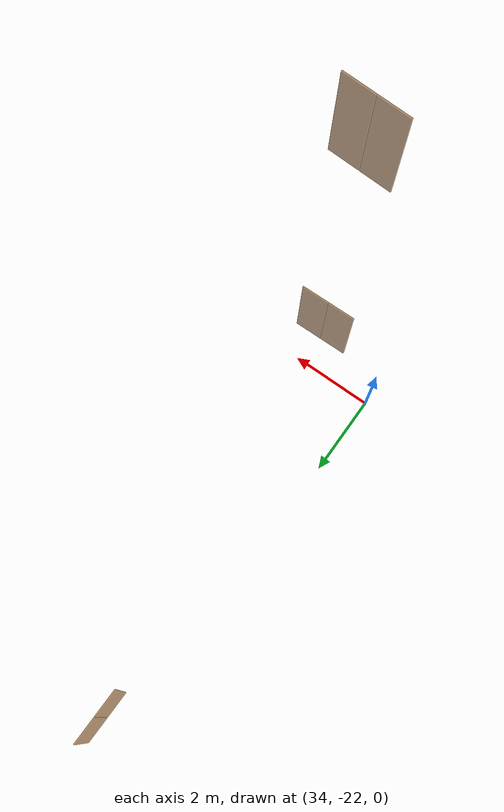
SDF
<sdf version="1.7">
 <world name="sim_world">
  <model name="TD1019AA">
   <pose>35.841424859408036 -22.755942036261796 0.0 0 0 -3.1322933793545134</pose>
   <link name="right">
    <pose>0.3469624931473078 0 1.11 0 0 0</pose>
    <visual name="right_visual">
     <geometry><box><size>0.6839249862946156 0.03 2.2</size></box></geometry>
     <material>
      <ambient>0.5 0.25 0 0.6</ambient>
      <diffuse>0.5 0.25 0 0.6</diffuse>
      <pbr><metal><metalness>0.0</metalness></metal></pbr>
     </material>
    </visual>
    <collision name="right_collision">
     <geometry><box><size>0.6839249862946156 0.03 2.2</size></box></geometry>
     <surface><contact><collide_bitmask>0x02</collide_bitmask></contact></surface>
    </collision>
    <inertial>
     <mass>50.0</mass>
     <inertia><ixx>20.17041666666667</ixx><iyy>22.11563911199205</iyy><izz>1.9527224453253758</izz></inertia>
    </inertial>
   </link>
   <joint name="right_joint" type="revolute">
    <parent>world</parent>
    <child>right</child>
    <axis><xyz>0 0 -1</xyz><limit><lower>0</lower><upper>1.57</upper></limit></axis>
    <pose>0.3469624931473078 0 0 0 0 0</pose>
   </joint>
   <link name="left">
    <pose>-0.3469624931473078 0 1.11 0 0 0</pose>
    <visual name="left_visual">
     <geometry><box><size>0.6839249862946156 0.03 2.2</size></box></geometry>
     <material>
      <ambient>0.5 0.25 0 0.6</ambient>
      <diffuse>0.5 0.25 0 0.6</diffuse>
      <pbr><metal><metalness>0.0</metalness></metal></pbr>
     </material>
    </visual>
    <collision name="left_collision">
     <geometry><box><size>0.6839249862946156 0.03 2.2</size></box></geometry>
     <surface><contact><collide_bitmask>0x02</collide_bitmask></contact></surface>
    </collision>
    <inertial>
     <mass>50.0</mass>
     <inertia><ixx>20.17041666666667</ixx><iyy>22.11563911199205</iyy><izz>1.9527224453253758</izz></inertia>
    </inertial>
   </link>
   <joint name="left_joint" type="revolute">
    <parent>world</parent>
    <child>left</child>
    <axis><xyz>0 0 -1</xyz><limit><lower>-1.57</lower><upper>0</upper></limit></axis>
    <pose>-0.3469624931473078 0 0 0 0 0</pose>
   </joint>
   <plugin name="register_component" filename="libregister_component.so">
    <component name="Door">
     <v_max_door>0.5</v_max_door>
     <a_max_door>0.3</a_max_door>
     <a_nom_door>0.15</a_nom_door>
     <dx_min_door>0.01</dx_min_door>
     <f_max_door>500.0</f_max_door>
     <ros_interface>true</ros_interface>
     <door name="TD1019AA" type="DoubleSwingDoor" left_joint_name="left_joint" right_joint_name="right_joint"/>
    </component>
   </plugin>
  </model>
  <model name="TD1021AA">
   <pose>34.61294872050826 -12.449338541510535 0.0 0 0 1.5546589964034163</pose>
   <link name="right">
    <pose>0.345297861169204 0 1.11 0 0 0</pose>
    <visual name="right_visual">
     <geometry><box><size>0.680595722338408 0.03 2.2</size></box></geometry>
     <material>
      <ambient>0.5 0.25 0 0.6</ambient>
      <diffuse>0.5 0.25 0 0.6</diffuse>
      <pbr><metal><metalness>0.0</metalness></metal></pbr>
     </material>
    </visual>
    <collision name="right_collision">
     <geometry><box><size>0.680595722338408 0.03 2.2</size></box></geometry>
     <surface><contact><collide_bitmask>0x02</collide_bitmask></contact></surface>
    </collision>
    <inertial>
     <mass>50.0</mass>
     <inertia><ixx>20.17041666666667</ixx><iyy>22.096710571938917</iyy><izz>1.9337939052722477</izz></inertia>
    </inertial>
   </link>
   <joint name="right_joint" type="revolute">
    <parent>world</parent>
    <child>right</child>
    <axis><xyz>0 0 -1</xyz><limit><lower>0</lower><upper>1.57</upper></limit></axis>
    <pose>0.345297861169204 0 0 0 0 0</pose>
   </joint>
   <link name="left">
    <pose>-0.345297861169204 0 1.11 0 0 0</pose>
    <visual name="left_visual">
     <geometry><box><size>0.680595722338408 0.03 2.2</size></box></geometry>
     <material>
      <ambient>0.5 0.25 0 0.6</ambient>
      <diffuse>0.5 0.25 0 0.6</diffuse>
      <pbr><metal><metalness>0.0</metalness></metal></pbr>
     </material>
    </visual>
    <collision name="left_collision">
     <geometry><box><size>0.680595722338408 0.03 2.2</size></box></geometry>
     <surface><contact><collide_bitmask>0x02</collide_bitmask></contact></surface>
    </collision>
    <inertial>
     <mass>50.0</mass>
     <inertia><ixx>20.17041666666667</ixx><iyy>22.096710571938917</iyy><izz>1.9337939052722477</izz></inertia>
    </inertial>
   </link>
   <joint name="left_joint" type="revolute">
    <parent>world</parent>
    <child>left</child>
    <axis><xyz>0 0 -1</xyz><limit><lower>-1.57</lower><upper>0</upper></limit></axis>
    <pose>-0.345297861169204 0 0 0 0 0</pose>
   </joint>
   <plugin name="register_component" filename="libregister_component.so">
    <component name="Door">
     <v_max_door>0.5</v_max_door>
     <a_max_door>0.3</a_max_door>
     <a_nom_door>0.15</a_nom_door>
     <dx_min_door>0.01</dx_min_door>
     <f_max_door>500.0</f_max_door>
     <ros_interface>true</ros_interface>
     <door name="TD1021AA" type="DoubleSwingDoor" left_joint_name="left_joint" right_joint_name="right_joint"/>
    </component>
   </plugin>
  </model>
  <model name="TD1102">
   <pose>35.83267012767112 -22.75507687068682 8.0 0 0 3.096863950006291</pose>
   <link name="right">
    <pose>0.3351213235833892 0 1.11 0 0 0</pose>
    <visual name="right_visual">
     <geometry><box><size>0.6602426471667784 0.03 2.2</size></box></geometry>
     <material>
      <ambient>0.5 0.25 0 0.6</ambient>
      <diffuse>0.5 0.25 0 0.6</diffuse>
      <pbr><metal><metalness>0.0</metalness></metal></pbr>
     </material>
    </visual>
    <collision name="right_collision">
     <geometry><box><size>0.6602426471667784 0.03 2.2</size></box></geometry>
     <surface><contact><collide_bitmask>0x02</collide_bitmask></contact></surface>
    </collision>
    <inertial>
     <mass>50.0</mass>
     <inertia><ixx>20.17041666666667</ixx><iyy>21.983001471407484</iyy><izz>1.820084804740813</izz></inertia>
    </inertial>
   </link>
   <joint name="right_joint" type="revolute">
    <parent>world</parent>
    <child>right</child>
    <axis><xyz>0 0 -1</xyz><limit><lower>0</lower><upper>1.57</upper></limit></axis>
    <pose>0.3351213235833892 0 0 0 0 0</pose>
   </joint>
   <link name="left">
    <pose>-0.3351213235833892 0 1.11 0 0 0</pose>
    <visual name="left_visual">
     <geometry><box><size>0.6602426471667784 0.03 2.2</size></box></geometry>
     <material>
      <ambient>0.5 0.25 0 0.6</ambient>
      <diffuse>0.5 0.25 0 0.6</diffuse>
      <pbr><metal><metalness>0.0</metalness></metal></pbr>
     </material>
    </visual>
    <collision name="left_collision">
     <geometry><box><size>0.6602426471667784 0.03 2.2</size></box></geometry>
     <surface><contact><collide_bitmask>0x02</collide_bitmask></contact></surface>
    </collision>
    <inertial>
     <mass>50.0</mass>
     <inertia><ixx>20.17041666666667</ixx><iyy>21.983001471407484</iyy><izz>1.820084804740813</izz></inertia>
    </inertial>
   </link>
   <joint name="left_joint" type="revolute">
    <parent>world</parent>
    <child>left</child>
    <axis><xyz>0 0 -1</xyz><limit><lower>-1.57</lower><upper>0</upper></limit></axis>
    <pose>-0.3351213235833892 0 0 0 0 0</pose>
   </joint>
   <plugin name="register_component" filename="libregister_component.so">
    <component name="Door">
     <v_max_door>0.5</v_max_door>
     <a_max_door>0.3</a_max_door>
     <a_nom_door>0.15</a_nom_door>
     <dx_min_door>0.01</dx_min_door>
     <f_max_door>500.0</f_max_door>
     <ros_interface>true</ros_interface>
     <door name="TD1102" type="DoubleSwingDoor" left_joint_name="left_joint" right_joint_name="right_joint"/>
    </component>
   </plugin>
  </model>
 </world>
</sdf>
